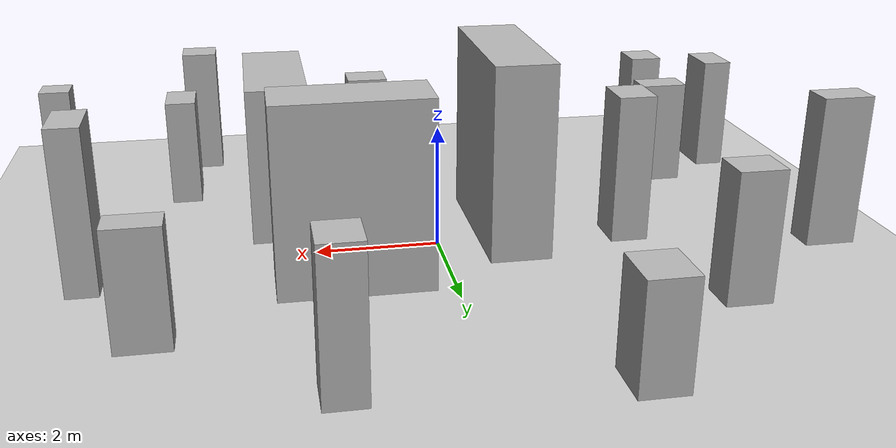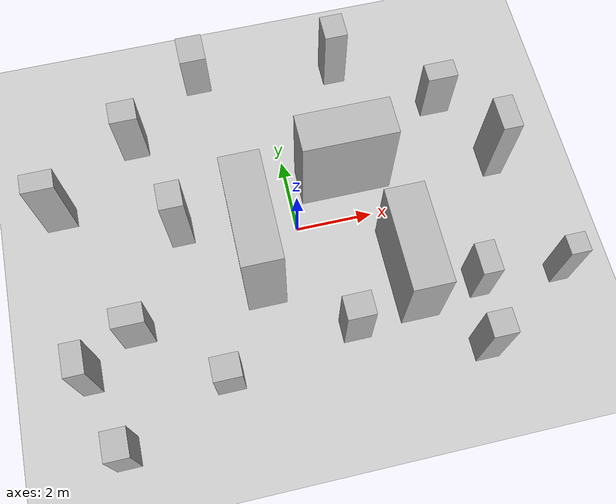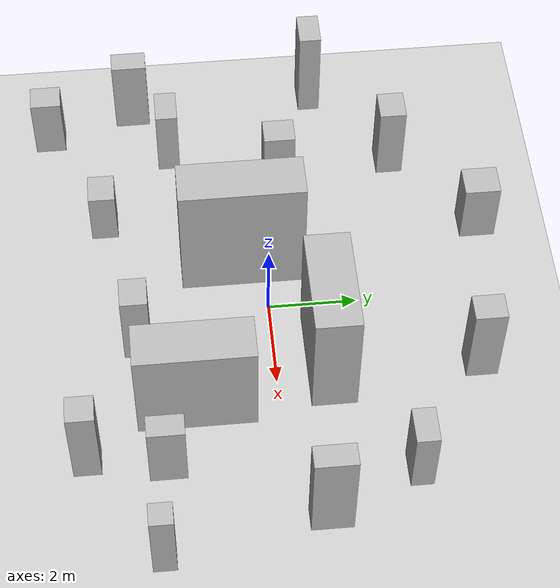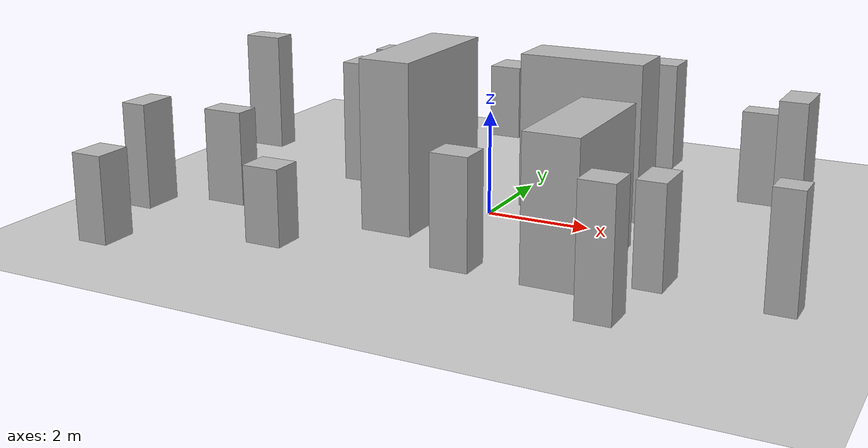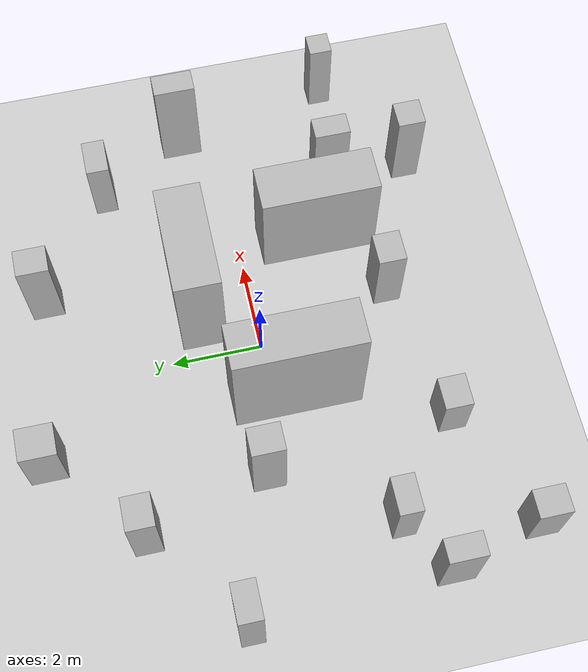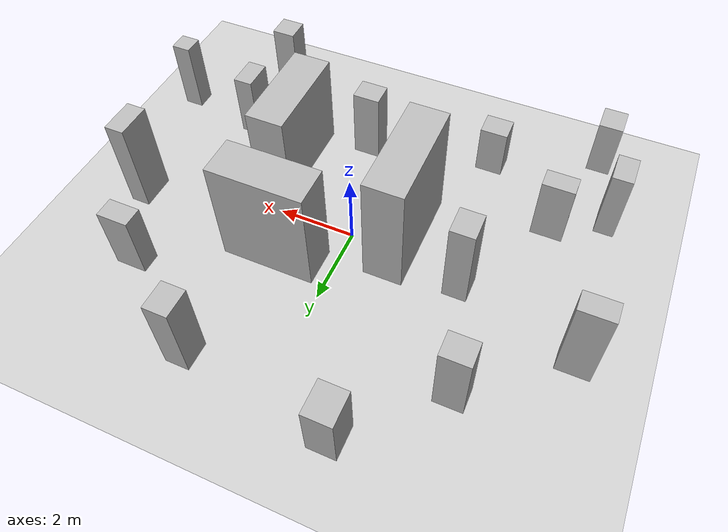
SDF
<?xml version="1.0"?>
<sdf version="1.6">
  <world name="planner_world">
    <gravity>0 0 -9.81</gravity>

    <!-- Ground plane -->
    <include><uri>model://ground_plane</uri></include>
    <!-- Sun light -->
    <include><uri>model://sun</uri></include>

    <!--
      Obstacles matching the dense scenario of planner_core_demo.
      These are axis-aligned boxes placed in a 16×14 m arena.
      Z fixed at 1.0 m, height varying ~0.9–2.8 m.
    -->

    <!-- Central large walls -->
    <model name="wall_center_1">
      <pose>-1.2 -0.5 1.6 0 0 0</pose>
      <link name="link"><visual name="vis"><geometry><box><size>1.0 2.8 3.2</size></box></geometry></visual>
      <collision name="col"><geometry><box><size>1.0 2.8 3.2</size></box></geometry></collision></link>
      <static>true</static>
    </model>
    <model name="wall_center_2">
      <pose>1.5 1.2 1.5 0 0 0</pose>
      <link name="link"><visual name="vis"><geometry><box><size>2.4 1.0 3.0</size></box></geometry></visual>
      <collision name="col"><geometry><box><size>2.4 1.0 3.0</size></box></geometry></collision></link>
      <static>true</static>
    </model>
    <model name="wall_center_3">
      <pose>2.5 -1.8 1.3 0 0 0</pose>
      <link name="link"><visual name="vis"><geometry><box><size>1.0 2.6 2.6</size></box></geometry></visual>
      <collision name="col"><geometry><box><size>1.0 2.6 2.6</size></box></geometry></collision></link>
      <static>true</static>
    </model>

    <!-- Random scatter obstacles (~20 representative ones from the dense scene) -->
    <model name="obs_01"><pose>-5.2 -4.8 1.0 0 0 0</pose><static>true</static><link name="l"><collision name="c"><geometry><box><size>0.6 0.7 1.6</size></box></geometry></collision><visual name="v"><geometry><box><size>0.6 0.7 1.6</size></box></geometry></visual></link></model>
    <model name="obs_02"><pose>-3.8 3.2 1.3 0 0 0</pose><static>true</static><link name="l"><collision name="c"><geometry><box><size>0.7 0.6 2.0</size></box></geometry></collision><visual name="v"><geometry><box><size>0.7 0.6 2.0</size></box></geometry></visual></link></model>
    <model name="obs_03"><pose>4.1 -2.5 1.1 0 0 0</pose><static>true</static><link name="l"><collision name="c"><geometry><box><size>0.5 0.8 1.8</size></box></geometry></collision><visual name="v"><geometry><box><size>0.5 0.8 1.8</size></box></geometry></visual></link></model>
    <model name="obs_04"><pose>-6.0 1.5 1.5 0 0 0</pose><static>true</static><link name="l"><collision name="c"><geometry><box><size>0.8 0.5 2.4</size></box></geometry></collision><visual name="v"><geometry><box><size>0.8 0.5 2.4</size></box></geometry></visual></link></model>
    <model name="obs_05"><pose>2.0 4.5 1.2 0 0 0</pose><static>true</static><link name="l"><collision name="c"><geometry><box><size>0.6 0.7 2.2</size></box></geometry></collision><visual name="v"><geometry><box><size>0.6 0.7 2.2</size></box></geometry></visual></link></model>
    <model name="obs_06"><pose>-2.5 -3.6 0.9 0 0 0</pose><static>true</static><link name="l"><collision name="c"><geometry><box><size>0.7 0.6 1.4</size></box></geometry></collision><visual name="v"><geometry><box><size>0.7 0.6 1.4</size></box></geometry></visual></link></model>
    <model name="obs_07"><pose>5.5 0.8 1.4 0 0 0</pose><static>true</static><link name="l"><collision name="c"><geometry><box><size>0.5 0.9 2.6</size></box></geometry></collision><visual name="v"><geometry><box><size>0.5 0.9 2.6</size></box></geometry></visual></link></model>
    <model name="obs_08"><pose>-4.5 -2.0 1.1 0 0 0</pose><static>true</static><link name="l"><collision name="c"><geometry><box><size>0.8 0.5 1.8</size></box></geometry></collision><visual name="v"><geometry><box><size>0.8 0.5 1.8</size></box></geometry></visual></link></model>
    <model name="obs_09"><pose>3.8 -4.2 1.3 0 0 0</pose><static>true</static><link name="l"><collision name="c"><geometry><box><size>0.6 0.6 2.2</size></box></geometry></collision><visual name="v"><geometry><box><size>0.6 0.6 2.2</size></box></geometry></visual></link></model>
    <model name="obs_10"><pose>-1.8 5.0 1.0 0 0 0</pose><static>true</static><link name="l"><collision name="c"><geometry><box><size>0.7 0.8 1.6</size></box></geometry></collision><visual name="v"><geometry><box><size>0.7 0.8 1.6</size></box></geometry></visual></link></model>
    <model name="obs_11"><pose>6.2 -2.7 1.2 0 0 0</pose><static>true</static><link name="l"><collision name="c"><geometry><box><size>0.5 0.5 2.0</size></box></geometry></collision><visual name="v"><geometry><box><size>0.5 0.5 2.0</size></box></geometry></visual></link></model>
    <model name="obs_12"><pose>-3.0 0.5 1.4 0 0 0</pose><static>true</static><link name="l"><collision name="c"><geometry><box><size>0.6 0.7 2.4</size></box></geometry></collision><visual name="v"><geometry><box><size>0.6 0.7 2.4</size></box></geometry></visual></link></model>
    <model name="obs_13"><pose>0.8 -3.0 1.1 0 0 0</pose><static>true</static><link name="l"><collision name="c"><geometry><box><size>0.7 0.6 2.0</size></box></geometry></collision><visual name="v"><geometry><box><size>0.7 0.6 2.0</size></box></geometry></visual></link></model>
    <model name="obs_14"><pose>4.5 2.8 1.0 0 0 0</pose><static>true</static><link name="l"><collision name="c"><geometry><box><size>0.8 0.5 1.8</size></box></geometry></collision><visual name="v"><geometry><box><size>0.8 0.5 1.8</size></box></geometry></visual></link></model>
    <model name="obs_15"><pose>-5.8 -2.8 1.2 0 0 0</pose><static>true</static><link name="l"><collision name="c"><geometry><box><size>0.5 0.8 2.0</size></box></geometry></collision><visual name="v"><geometry><box><size>0.5 0.8 2.0</size></box></geometry></visual></link></model>
  </world>
</sdf>
